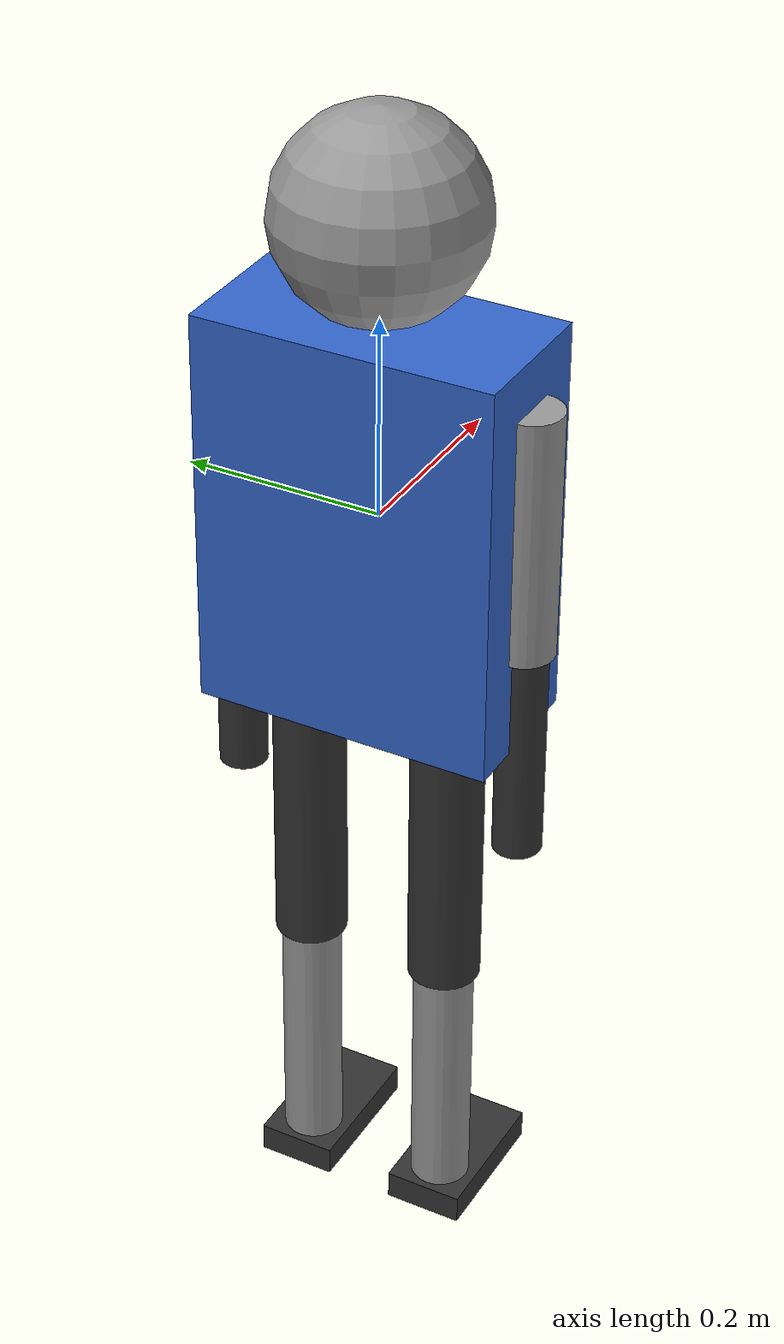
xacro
<?xml version="1.0"?>
<robot xmlns:xacro="http://www.ros.org/wiki/xacro" name="humanoid">

  <!-- ==================== Properties ==================== -->
  <xacro:property name="torso_height" value="0.4"/>
  <xacro:property name="torso_width" value="0.3"/>
  <xacro:property name="torso_depth" value="0.15"/>
  <xacro:property name="head_radius" value="0.1"/>
  <xacro:property name="upper_arm_length" value="0.25"/>
  <xacro:property name="forearm_length" value="0.22"/>
  <xacro:property name="upper_leg_length" value="0.3"/>
  <xacro:property name="lower_leg_length" value="0.28"/>
  <xacro:property name="foot_length" value="0.15"/>
  <xacro:property name="limb_radius" value="0.03"/>

  <!-- ==================== Materials ==================== -->
  <material name="blue">
    <color rgba="0.2 0.4 0.8 1.0"/>
  </material>
  <material name="grey">
    <color rgba="0.6 0.6 0.6 1.0"/>
  </material>
  <material name="dark">
    <color rgba="0.2 0.2 0.2 1.0"/>
  </material>

  <!-- ==================== Torso ==================== -->
  <link name="base_link">
    <visual>
      <geometry>
        <box size="${torso_depth} ${torso_width} ${torso_height}"/>
      </geometry>
      <material name="blue"/>
    </visual>
    <collision>
      <geometry>
        <box size="${torso_depth} ${torso_width} ${torso_height}"/>
      </geometry>
    </collision>
    <inertial>
      <mass value="10.0"/>
      <inertia ixx="0.1" ixy="0" ixz="0" iyy="0.1" iyz="0" izz="0.05"/>
    </inertial>
  </link>

  <!-- ==================== Head ==================== -->
  <link name="head_link">
    <visual>
      <geometry>
        <sphere radius="${head_radius}"/>
      </geometry>
      <material name="grey"/>
    </visual>
    <collision>
      <geometry>
        <sphere radius="${head_radius}"/>
      </geometry>
    </collision>
    <inertial>
      <mass value="2.0"/>
      <inertia ixx="0.01" ixy="0" ixz="0" iyy="0.01" iyz="0" izz="0.01"/>
    </inertial>
  </link>

  <joint name="head_pan" type="revolute">
    <parent link="base_link"/>
    <child link="head_link"/>
    <origin xyz="0 0 ${torso_height/2 + head_radius}" rpy="0 0 0"/>
    <axis xyz="0 0 1"/>
    <limit lower="-1.57" upper="1.57" effort="10" velocity="2.0"/>
  </joint>

  <!-- ==================== Arm Macro ==================== -->
  <xacro:macro name="arm" params="side reflect">
    <link name="${side}_upper_arm">
      <visual>
        <origin xyz="0 0 ${-upper_arm_length/2}"/>
        <geometry>
          <cylinder radius="${limb_radius}" length="${upper_arm_length}"/>
        </geometry>
        <material name="grey"/>
      </visual>
      <collision>
        <origin xyz="0 0 ${-upper_arm_length/2}"/>
        <geometry>
          <cylinder radius="${limb_radius}" length="${upper_arm_length}"/>
        </geometry>
      </collision>
      <inertial>
        <mass value="1.5"/>
        <inertia ixx="0.01" ixy="0" ixz="0" iyy="0.01" iyz="0" izz="0.002"/>
      </inertial>
    </link>

    <joint name="${side}_shoulder_pitch" type="revolute">
      <parent link="base_link"/>
      <child link="${side}_upper_arm"/>
      <origin xyz="0 ${reflect * torso_width/2} ${torso_height/2 - 0.05}" rpy="0 0 0"/>
      <axis xyz="0 1 0"/>
      <limit lower="-3.14" upper="3.14" effort="20" velocity="2.0"/>
    </joint>

    <link name="${side}_forearm">
      <visual>
        <origin xyz="0 0 ${-forearm_length/2}"/>
        <geometry>
          <cylinder radius="${limb_radius * 0.8}" length="${forearm_length}"/>
        </geometry>
        <material name="dark"/>
      </visual>
      <collision>
        <origin xyz="0 0 ${-forearm_length/2}"/>
        <geometry>
          <cylinder radius="${limb_radius * 0.8}" length="${forearm_length}"/>
        </geometry>
      </collision>
      <inertial>
        <mass value="1.0"/>
        <inertia ixx="0.005" ixy="0" ixz="0" iyy="0.005" iyz="0" izz="0.001"/>
      </inertial>
    </link>

    <joint name="${side}_elbow_pitch" type="revolute">
      <parent link="${side}_upper_arm"/>
      <child link="${side}_forearm"/>
      <origin xyz="0 0 ${-upper_arm_length}" rpy="0 0 0"/>
      <axis xyz="0 1 0"/>
      <limit lower="-2.5" upper="0.0" effort="15" velocity="2.0"/>
    </joint>
  </xacro:macro>

  <xacro:arm side="left" reflect="1"/>
  <xacro:arm side="right" reflect="-1"/>

  <!-- ==================== Leg Macro ==================== -->
  <xacro:macro name="leg" params="side reflect">
    <link name="${side}_upper_leg">
      <visual>
        <origin xyz="0 0 ${-upper_leg_length/2}"/>
        <geometry>
          <cylinder radius="${limb_radius * 1.2}" length="${upper_leg_length}"/>
        </geometry>
        <material name="dark"/>
      </visual>
      <collision>
        <origin xyz="0 0 ${-upper_leg_length/2}"/>
        <geometry>
          <cylinder radius="${limb_radius * 1.2}" length="${upper_leg_length}"/>
        </geometry>
      </collision>
      <inertial>
        <mass value="3.0"/>
        <inertia ixx="0.03" ixy="0" ixz="0" iyy="0.03" iyz="0" izz="0.005"/>
      </inertial>
    </link>

    <joint name="${side}_hip_pitch" type="revolute">
      <parent link="base_link"/>
      <child link="${side}_upper_leg"/>
      <origin xyz="0 ${reflect * torso_width/4} ${-torso_height/2}" rpy="0 0 0"/>
      <axis xyz="0 1 0"/>
      <limit lower="-1.57" upper="1.57" effort="30" velocity="2.0"/>
    </joint>

    <link name="${side}_lower_leg">
      <visual>
        <origin xyz="0 0 ${-lower_leg_length/2}"/>
        <geometry>
          <cylinder radius="${limb_radius}" length="${lower_leg_length}"/>
        </geometry>
        <material name="grey"/>
      </visual>
      <collision>
        <origin xyz="0 0 ${-lower_leg_length/2}"/>
        <geometry>
          <cylinder radius="${limb_radius}" length="${lower_leg_length}"/>
        </geometry>
      </collision>
      <inertial>
        <mass value="2.0"/>
        <inertia ixx="0.02" ixy="0" ixz="0" iyy="0.02" iyz="0" izz="0.003"/>
      </inertial>
    </link>

    <joint name="${side}_knee_pitch" type="revolute">
      <parent link="${side}_upper_leg"/>
      <child link="${side}_lower_leg"/>
      <origin xyz="0 0 ${-upper_leg_length}" rpy="0 0 0"/>
      <axis xyz="0 1 0"/>
      <limit lower="0.0" upper="2.5" effort="25" velocity="2.0"/>
    </joint>

    <link name="${side}_foot">
      <visual>
        <origin xyz="${foot_length/4} 0 0"/>
        <geometry>
          <box size="${foot_length} 0.08 0.03"/>
        </geometry>
        <material name="dark"/>
      </visual>
      <collision>
        <origin xyz="${foot_length/4} 0 0"/>
        <geometry>
          <box size="${foot_length} 0.08 0.03"/>
        </geometry>
      </collision>
      <inertial>
        <mass value="0.5"/>
        <inertia ixx="0.001" ixy="0" ixz="0" iyy="0.001" iyz="0" izz="0.001"/>
      </inertial>
    </link>

    <joint name="${side}_ankle_pitch" type="revolute">
      <parent link="${side}_lower_leg"/>
      <child link="${side}_foot"/>
      <origin xyz="0 0 ${-lower_leg_length}" rpy="0 0 0"/>
      <axis xyz="0 1 0"/>
      <limit lower="-0.78" upper="0.78" effort="15" velocity="2.0"/>
    </joint>
  </xacro:macro>

  <xacro:leg side="left" reflect="1"/>
  <xacro:leg side="right" reflect="-1"/>

</robot>
